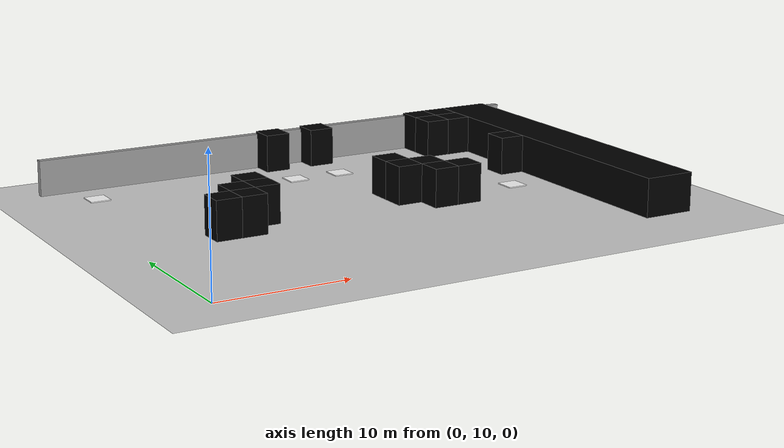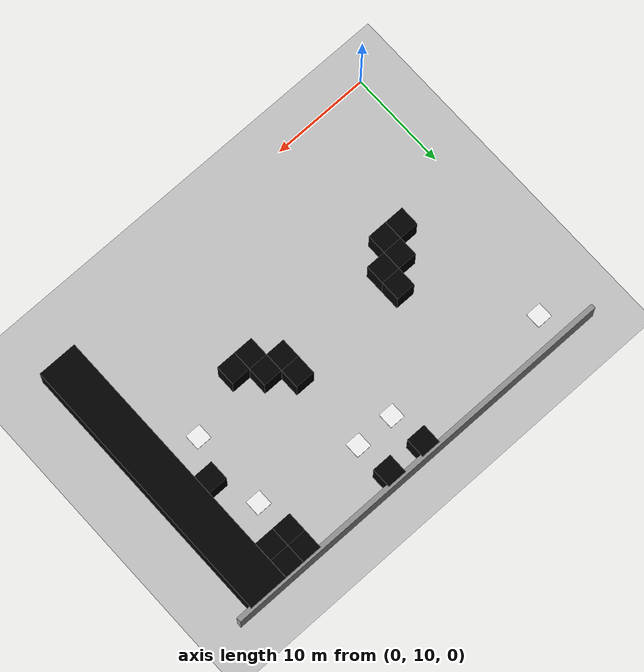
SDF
<sdf version="1.7">
 <world name="default">
  <model name="ground_plane">
   <static>1</static>
   <link name="link">
    <collision name="collision">
     <geometry><plane><normal>0 0 1</normal><size>100 100</size></plane></geometry>
     <surface><friction><ode><mu>100</mu><mu2>50</mu2></ode></friction></surface>
    </collision>
    <visual name="visual">
     <cast_shadows>0</cast_shadows>
     <geometry><plane><normal>0 0 1</normal><size>100 100</size></plane></geometry>
     <material>
      <script><uri>file://media/materials/scripts/gazebo.material</uri><name>Gazebo/Grey</name></script>
     </material>
    </visual>
   </link>
  </model>
  <model name="brick_black_2x2">
   <link name="chassis">
    <pose>0 0 1.5 0 -0 0</pose>
    <inertial>
     <mass>1</mass>
     <inertia><ixx>1</ixx><ixy>0</ixy><ixz>0</ixz><iyy>1</iyy><iyz>0</iyz><izz>1</izz></inertia>
    </inertial>
    <visual name="visual">
     <geometry><mesh><uri>model://brick_box_3x1x3/meshes/simple_box.dae</uri><scale>2 2 3</scale></mesh></geometry>
     <material>
      <script>
       <uri>model://brick_box_3x1x3/materials/scripts</uri>
       <uri>model://brick_box_3x1x3/materials/textures</uri>
       <name>BrickBox/Diffuse</name>
      </script>
      <shader type="vertex"><normal_map>__default__</normal_map></shader>
      <ambient>0 0 0 1</ambient>
      <diffuse>0 0 0 1</diffuse>
      <specular>0 0 0 1</specular>
      <emissive>0 0 0 1</emissive>
      <lighting>1</lighting>
     </material>
    </visual>
    <collision name="collision">
     <geometry><box><size>2 2 3</size></box></geometry>
     <surface>
      <friction>
       <ode><mu>1</mu><mu2>1</mu2><fdir1>0 0 0</fdir1><slip1>0</slip1><slip2>0</slip2></ode>
       <torsional>
        <coefficient>1</coefficient>
        <patch_radius>0</patch_radius>
        <surface_radius>0</surface_radius>
        <use_patch_radius>1</use_patch_radius>
        <ode><slip>0</slip></ode>
       </torsional>
      </friction>
      <bounce><restitution_coefficient>0</restitution_coefficient><threshold>1e+06</threshold></bounce>
      <contact>
       <collide_without_contact>0</collide_without_contact>
       <collide_without_contact_bitmask>1</collide_without_contact_bitmask>
       <collide_bitmask>1</collide_bitmask>
       <ode>
        <soft_cfm>0</soft_cfm>
        <soft_erp>0.2</soft_erp>
        <kp>1e+13</kp>
        <kd>1</kd>
        <max_vel>0.01</max_vel>
        <min_depth>0</min_depth>
       </ode>
       <bullet>
        <split_impulse>1</split_impulse>
        <split_impulse_penetration_threshold>-0.01</split_impulse_penetration_threshold>
        <soft_cfm>0</soft_cfm>
        <soft_erp>0.2</soft_erp>
        <kp>1e+13</kp>
        <kd>1</kd>
       </bullet>
      </contact>
     </surface>
    </collision>
   </link>
   <static>1</static>
   <pose>33 39 0 0 -0 0</pose>
  </model>
  <model name="brick_black_2x2_0">
   <link name="chassis">
    <pose>0 0 1.5 0 -0 0</pose>
    <inertial>
     <mass>1</mass>
     <inertia><ixx>1</ixx><ixy>0</ixy><ixz>0</ixz><iyy>1</iyy><iyz>0</iyz><izz>1</izz></inertia>
    </inertial>
    <visual name="visual">
     <geometry><mesh><uri>model://brick_box_3x1x3/meshes/simple_box.dae</uri><scale>2 2 3</scale></mesh></geometry>
     <material>
      <script>
       <uri>model://brick_box_3x1x3/materials/scripts</uri>
       <uri>model://brick_box_3x1x3/materials/textures</uri>
       <name>BrickBox/Diffuse</name>
      </script>
      <shader type="vertex"><normal_map>__default__</normal_map></shader>
      <ambient>0 0 0 1</ambient>
      <diffuse>0 0 0 1</diffuse>
      <specular>0 0 0 1</specular>
      <emissive>0 0 0 1</emissive>
      <lighting>1</lighting>
     </material>
    </visual>
    <collision name="collision">
     <geometry><box><size>2 2 3</size></box></geometry>
     <surface>
      <friction>
       <ode><mu>1</mu><mu2>1</mu2><fdir1>0 0 0</fdir1><slip1>0</slip1><slip2>0</slip2></ode>
       <torsional>
        <coefficient>1</coefficient>
        <patch_radius>0</patch_radius>
        <surface_radius>0</surface_radius>
        <use_patch_radius>1</use_patch_radius>
        <ode><slip>0</slip></ode>
       </torsional>
      </friction>
      <bounce><restitution_coefficient>0</restitution_coefficient><threshold>1e+06</threshold></bounce>
      <contact>
       <collide_without_contact>0</collide_without_contact>
       <collide_without_contact_bitmask>1</collide_without_contact_bitmask>
       <collide_bitmask>1</collide_bitmask>
       <ode>
        <soft_cfm>0</soft_cfm>
        <soft_erp>0.2</soft_erp>
        <kp>1e+13</kp>
        <kd>1</kd>
        <max_vel>0.01</max_vel>
        <min_depth>0</min_depth>
       </ode>
       <bullet>
        <split_impulse>1</split_impulse>
        <split_impulse_penetration_threshold>-0.01</split_impulse_penetration_threshold>
        <soft_cfm>0</soft_cfm>
        <soft_erp>0.2</soft_erp>
        <kp>1e+13</kp>
        <kd>1</kd>
       </bullet>
      </contact>
     </surface>
    </collision>
   </link>
   <static>1</static>
   <pose>35 29 0 0 -0 0</pose>
  </model>
  <model name="brick_black_2x2_2">
   <link name="chassis">
    <pose>0 0 1.5 0 -0 0</pose>
    <inertial>
     <mass>1</mass>
     <inertia><ixx>1</ixx><ixy>0</ixy><ixz>0</ixz><iyy>1</iyy><iyz>0</iyz><izz>1</izz></inertia>
    </inertial>
    <visual name="visual">
     <geometry><mesh><uri>model://brick_box_3x1x3/meshes/simple_box.dae</uri><scale>2 2 3</scale></mesh></geometry>
     <material>
      <script>
       <uri>model://brick_box_3x1x3/materials/scripts</uri>
       <uri>model://brick_box_3x1x3/materials/textures</uri>
       <name>BrickBox/Diffuse</name>
      </script>
      <shader type="vertex"><normal_map>__default__</normal_map></shader>
      <ambient>0 0 0 1</ambient>
      <diffuse>0 0 0 1</diffuse>
      <specular>0 0 0 1</specular>
      <emissive>0 0 0 1</emissive>
      <lighting>1</lighting>
     </material>
    </visual>
    <collision name="collision">
     <geometry><box><size>2 2 3</size></box></geometry>
     <surface>
      <friction>
       <ode><mu>1</mu><mu2>1</mu2><fdir1>0 0 0</fdir1><slip1>0</slip1><slip2>0</slip2></ode>
       <torsional>
        <coefficient>1</coefficient>
        <patch_radius>0</patch_radius>
        <surface_radius>0</surface_radius>
        <use_patch_radius>1</use_patch_radius>
        <ode><slip>0</slip></ode>
       </torsional>
      </friction>
      <bounce><restitution_coefficient>0</restitution_coefficient><threshold>1e+06</threshold></bounce>
      <contact>
       <collide_without_contact>0</collide_without_contact>
       <collide_without_contact_bitmask>1</collide_without_contact_bitmask>
       <collide_bitmask>1</collide_bitmask>
       <ode>
        <soft_cfm>0</soft_cfm>
        <soft_erp>0.2</soft_erp>
        <kp>1e+13</kp>
        <kd>1</kd>
        <max_vel>0.01</max_vel>
        <min_depth>0</min_depth>
       </ode>
       <bullet>
        <split_impulse>1</split_impulse>
        <split_impulse_penetration_threshold>-0.01</split_impulse_penetration_threshold>
        <soft_cfm>0</soft_cfm>
        <soft_erp>0.2</soft_erp>
        <kp>1e+13</kp>
        <kd>1</kd>
       </bullet>
      </contact>
     </surface>
    </collision>
   </link>
   <static>1</static>
   <pose>33 37 0 0 -0 0</pose>
  </model>
  <model name="brick_black_2x2_3">
   <link name="chassis">
    <pose>0 0 1.5 0 -0 0</pose>
    <inertial>
     <mass>1</mass>
     <inertia><ixx>1</ixx><ixy>0</ixy><ixz>0</ixz><iyy>1</iyy><iyz>0</iyz><izz>1</izz></inertia>
    </inertial>
    <visual name="visual">
     <geometry><mesh><uri>model://brick_box_3x1x3/meshes/simple_box.dae</uri><scale>2 2 3</scale></mesh></geometry>
     <material>
      <script>
       <uri>model://brick_box_3x1x3/materials/scripts</uri>
       <uri>model://brick_box_3x1x3/materials/textures</uri>
       <name>BrickBox/Diffuse</name>
      </script>
      <shader type="vertex"><normal_map>__default__</normal_map></shader>
      <ambient>0 0 0 1</ambient>
      <diffuse>0 0 0 1</diffuse>
      <specular>0 0 0 1</specular>
      <emissive>0 0 0 1</emissive>
      <lighting>1</lighting>
     </material>
    </visual>
    <collision name="collision">
     <geometry><box><size>2 2 3</size></box></geometry>
     <surface>
      <friction>
       <ode><mu>1</mu><mu2>1</mu2><fdir1>0 0 0</fdir1><slip1>0</slip1><slip2>0</slip2></ode>
       <torsional>
        <coefficient>1</coefficient>
        <patch_radius>0</patch_radius>
        <surface_radius>0</surface_radius>
        <use_patch_radius>1</use_patch_radius>
        <ode><slip>0</slip></ode>
       </torsional>
      </friction>
      <bounce><restitution_coefficient>0</restitution_coefficient><threshold>1e+06</threshold></bounce>
      <contact>
       <collide_without_contact>0</collide_without_contact>
       <collide_without_contact_bitmask>1</collide_without_contact_bitmask>
       <collide_bitmask>1</collide_bitmask>
       <ode>
        <soft_cfm>0</soft_cfm>
        <soft_erp>0.2</soft_erp>
        <kp>1e+13</kp>
        <kd>1</kd>
        <max_vel>0.01</max_vel>
        <min_depth>0</min_depth>
       </ode>
       <bullet>
        <split_impulse>1</split_impulse>
        <split_impulse_penetration_threshold>-0.01</split_impulse_penetration_threshold>
        <soft_cfm>0</soft_cfm>
        <soft_erp>0.2</soft_erp>
        <kp>1e+13</kp>
        <kd>1</kd>
       </bullet>
      </contact>
     </surface>
    </collision>
   </link>
   <static>1</static>
   <pose>35 37 0 0 -0 0</pose>
  </model>
  <model name="brick_black_2x2_4">
   <link name="chassis">
    <pose>0 0 1.5 0 -0 0</pose>
    <inertial>
     <mass>1</mass>
     <inertia><ixx>1</ixx><ixy>0</ixy><ixz>0</ixz><iyy>1</iyy><iyz>0</iyz><izz>1</izz></inertia>
    </inertial>
    <visual name="visual">
     <geometry><mesh><uri>model://brick_box_3x1x3/meshes/simple_box.dae</uri><scale>2 2 3</scale></mesh></geometry>
     <material>
      <script>
       <uri>model://brick_box_3x1x3/materials/scripts</uri>
       <uri>model://brick_box_3x1x3/materials/textures</uri>
       <name>BrickBox/Diffuse</name>
      </script>
      <shader type="vertex"><normal_map>__default__</normal_map></shader>
      <ambient>0 0 0 1</ambient>
      <diffuse>0 0 0 1</diffuse>
      <specular>0 0 0 1</specular>
      <emissive>0 0 0 1</emissive>
      <lighting>1</lighting>
     </material>
    </visual>
    <collision name="collision">
     <geometry><box><size>2 2 3</size></box></geometry>
     <surface>
      <friction>
       <ode><mu>1</mu><mu2>1</mu2><fdir1>0 0 0</fdir1><slip1>0</slip1><slip2>0</slip2></ode>
       <torsional>
        <coefficient>1</coefficient>
        <patch_radius>0</patch_radius>
        <surface_radius>0</surface_radius>
        <use_patch_radius>1</use_patch_radius>
        <ode><slip>0</slip></ode>
       </torsional>
      </friction>
      <bounce><restitution_coefficient>0</restitution_coefficient><threshold>1e+06</threshold></bounce>
      <contact>
       <collide_without_contact>0</collide_without_contact>
       <collide_without_contact_bitmask>1</collide_without_contact_bitmask>
       <collide_bitmask>1</collide_bitmask>
       <ode>
        <soft_cfm>0</soft_cfm>
        <soft_erp>0.2</soft_erp>
        <kp>1e+13</kp>
        <kd>1</kd>
        <max_vel>0.01</max_vel>
        <min_depth>0</min_depth>
       </ode>
       <bullet>
        <split_impulse>1</split_impulse>
        <split_impulse_penetration_threshold>-0.01</split_impulse_penetration_threshold>
        <soft_cfm>0</soft_cfm>
        <soft_erp>0.2</soft_erp>
        <kp>1e+13</kp>
        <kd>1</kd>
       </bullet>
      </contact>
     </surface>
    </collision>
   </link>
   <static>1</static>
   <pose>35 39 0 0 -0 0</pose>
  </model>
  <model name="number1_2x2">
   <link name="link">
    <inertial>
     <mass>1</mass>
     <inertia><ixx>1</ixx><ixy>0</ixy><ixz>0</ixz><iyy>1</iyy><iyz>0</iyz><izz>1</izz></inertia>
    </inertial>
    <visual name="visual">
     <geometry><mesh><uri>model://number1/meshes/number.dae</uri><scale>2 2 0.1</scale></mesh></geometry>
     <material>
      <script>
       <uri>model://number1/materials/scripts</uri>
       <uri>model://number1/materials/textures</uri>
       <name>Number/One</name>
      </script>
      <shader type="pixel"><normal_map>__default__</normal_map></shader>
      <ambient>1 1 1 1</ambient>
      <diffuse>1 1 1 1</diffuse>
      <specular>0 0 0 1</specular>
      <emissive>0 0 0 1</emissive>
     </material>
    </visual>
   </link>
   <static>1</static>
   <pose>33 33 0 0 -0 3.14</pose>
  </model>
  <model name="number2_2x2">
   <link name="link">
    <inertial>
     <mass>1</mass>
     <inertia><ixx>1</ixx><ixy>0</ixy><ixz>0</ixz><iyy>1</iyy><iyz>0</iyz><izz>1</izz></inertia>
    </inertial>
    <visual name="visual">
     <geometry><mesh><uri>model://number1/meshes/number.dae</uri><scale>2 2 0.1</scale></mesh></geometry>
     <material>
      <script>
       <uri>model://number2/materials/scripts</uri>
       <uri>model://number2/materials/textures</uri>
       <name>Number/Two</name>
      </script>
      <shader type="pixel"><normal_map>__default__</normal_map></shader>
      <ambient>1 1 1 1</ambient>
      <diffuse>1 1 1 1</diffuse>
      <specular>0 0 0 1</specular>
      <emissive>0 0 0 1</emissive>
     </material>
    </visual>
   </link>
   <static>1</static>
   <pose>33 25 0 0 -0 3.14</pose>
  </model>
  <model name="number4_2x2">
   <link name="link">
    <inertial>
     <mass>1</mass>
     <inertia><ixx>1</ixx><ixy>0</ixy><ixz>0</ixz><iyy>1</iyy><iyz>0</iyz><izz>1</izz></inertia>
    </inertial>
    <visual name="visual">
     <geometry><mesh><uri>model://number1/meshes/number.dae</uri><scale>2 2 0.1</scale></mesh></geometry>
     <material>
      <script>
       <uri>model://number4/materials/scripts</uri>
       <uri>model://number4/materials/textures</uri>
       <name>Number/Four</name>
      </script>
      <shader type="pixel"><normal_map>__default__</normal_map></shader>
      <ambient>1 1 1 1</ambient>
      <diffuse>1 1 1 1</diffuse>
      <specular>0 0 0 1</specular>
      <emissive>0 0 0 1</emissive>
     </material>
    </visual>
   </link>
   <static>1</static>
   <pose>3 37 0 0 -0 3.14</pose>
  </model>
  <model name="number5_2x2">
   <link name="link">
    <inertial>
     <mass>1</mass>
     <inertia><ixx>1</ixx><ixy>0</ixy><ixz>0</ixz><iyy>1</iyy><iyz>0</iyz><izz>1</izz></inertia>
    </inertial>
    <visual name="visual">
     <geometry><mesh><uri>model://number1/meshes/number.dae</uri><scale>2 2 0.1</scale></mesh></geometry>
     <material>
      <script>
       <uri>model://number5/materials/scripts</uri>
       <uri>model://number5/materials/textures</uri>
       <name>Number/Five</name>
      </script>
      <shader type="pixel"><normal_map>__default__</normal_map></shader>
      <ambient>1 1 1 1</ambient>
      <diffuse>1 1 1 1</diffuse>
      <specular>0 0 0 1</specular>
      <emissive>0 0 0 1</emissive>
     </material>
    </visual>
   </link>
   <static>1</static>
   <pose>23 35 0 0 -0 3.14</pose>
  </model>
  <model name="number6_2x2">
   <link name="link">
    <inertial>
     <mass>1</mass>
     <inertia><ixx>1</ixx><ixy>0</ixy><ixz>0</ixz><iyy>1</iyy><iyz>0</iyz><izz>1</izz></inertia>
    </inertial>
    <visual name="visual">
     <geometry><mesh><uri>model://number1/meshes/number.dae</uri><scale>2 2 0.1</scale></mesh></geometry>
     <material>
      <script>
       <uri>model://number6/materials/scripts</uri>
       <uri>model://number6/materials/textures</uri>
       <name>Number/Six</name>
      </script>
      <shader type="pixel"><normal_map>__default__</normal_map></shader>
      <ambient>1 1 1 1</ambient>
      <diffuse>1 1 1 1</diffuse>
      <specular>0 0 0 1</specular>
      <emissive>0 0 0 1</emissive>
     </material>
    </visual>
   </link>
   <static>1</static>
   <pose>19 35 0 0 -0 3.14</pose>
  </model>
  <model name="grey_wall_42_0">
   <link name="link">
    <pose>0 0 1.4 0 -0 0</pose>
    <inertial>
     <mass>1</mass>
     <inertia><ixx>1</ixx><ixy>0</ixy><ixz>0</ixz><iyy>1</iyy><iyz>0</iyz><izz>1</izz></inertia>
    </inertial>
    <visual name="visual">
     <cast_shadows>0</cast_shadows>
     <geometry><box><size>42 0.5 2.8</size></box></geometry>
     <material>
      <script>
       <uri>model://grey_wall/materials/scripts</uri>
       <uri>model://grey_wall/materials/textures</uri>
       <name>vrc/grey_wall</name>
      </script>
      <shader type="vertex"><normal_map>__default__</normal_map></shader>
      <ambient>1 1 1 1</ambient>
      <diffuse>1 1 1 1</diffuse>
      <specular>0 0 0 1</specular>
      <emissive>0 0 0 1</emissive>
     </material>
    </visual>
    <collision name="collision">
     <geometry><box><size>42 0.5 2.8</size></box></geometry>
     <surface>
      <friction>
       <ode><mu>1</mu><mu2>1</mu2><fdir1>0 0 0</fdir1><slip1>0</slip1><slip2>0</slip2></ode>
       <torsional>
        <coefficient>1</coefficient>
        <patch_radius>0</patch_radius>
        <surface_radius>0</surface_radius>
        <use_patch_radius>1</use_patch_radius>
        <ode><slip>0</slip></ode>
       </torsional>
      </friction>
      <bounce><restitution_coefficient>0</restitution_coefficient><threshold>1e+06</threshold></bounce>
      <contact>
       <collide_without_contact>0</collide_without_contact>
       <collide_without_contact_bitmask>1</collide_without_contact_bitmask>
       <collide_bitmask>1</collide_bitmask>
       <ode>
        <soft_cfm>0</soft_cfm>
        <soft_erp>0.2</soft_erp>
        <kp>1e+13</kp>
        <kd>1</kd>
        <max_vel>0.01</max_vel>
        <min_depth>0</min_depth>
       </ode>
       <bullet>
        <split_impulse>1</split_impulse>
        <split_impulse_penetration_threshold>-0.01</split_impulse_penetration_threshold>
        <soft_cfm>0</soft_cfm>
        <soft_erp>0.2</soft_erp>
        <kp>1e+13</kp>
        <kd>1</kd>
       </bullet>
      </contact>
     </surface>
    </collision>
   </link>
   <static>1</static>
   <pose>20.5 40 0 0 -0 0</pose>
  </model>
  <model name="brick_black_28x4">
   <link name="chassis">
    <pose>0 0 1.5 0 -0 0</pose>
    <inertial>
     <mass>1</mass>
     <inertia><ixx>1</ixx><ixy>0</ixy><ixz>0</ixz><iyy>1</iyy><iyz>0</iyz><izz>1</izz></inertia>
    </inertial>
    <visual name="visual">
     <geometry>
      <mesh><uri>model://brick_box_3x1x3/meshes/simple_box.dae</uri><scale>28 4 3</scale></mesh>
     </geometry>
     <material>
      <script>
       <uri>model://brick_box_3x1x3/materials/scripts</uri>
       <uri>model://brick_box_3x1x3/materials/textures</uri>
       <name>BrickBox/Diffuse</name>
      </script>
      <shader type="vertex"><normal_map>__default__</normal_map></shader>
      <ambient>0 0 0 1</ambient>
      <diffuse>0 0 0 1</diffuse>
      <specular>0 0 0 1</specular>
      <emissive>0 0 0 1</emissive>
      <lighting>1</lighting>
     </material>
    </visual>
    <collision name="collision">
     <geometry><box><size>28 4 3</size></box></geometry>
     <surface>
      <friction>
       <ode><mu>1</mu><mu2>1</mu2><fdir1>0 0 0</fdir1><slip1>0</slip1><slip2>0</slip2></ode>
       <torsional>
        <coefficient>1</coefficient>
        <patch_radius>0</patch_radius>
        <surface_radius>0</surface_radius>
        <use_patch_radius>1</use_patch_radius>
        <ode><slip>0</slip></ode>
       </torsional>
      </friction>
      <bounce><restitution_coefficient>0</restitution_coefficient><threshold>1e+06</threshold></bounce>
      <contact>
       <collide_without_contact>0</collide_without_contact>
       <collide_without_contact_bitmask>1</collide_without_contact_bitmask>
       <collide_bitmask>1</collide_bitmask>
       <ode>
        <soft_cfm>0</soft_cfm>
        <soft_erp>0.2</soft_erp>
        <kp>1e+13</kp>
        <kd>1</kd>
        <max_vel>0.01</max_vel>
        <min_depth>0</min_depth>
       </ode>
       <bullet>
        <split_impulse>1</split_impulse>
        <split_impulse_penetration_threshold>-0.01</split_impulse_penetration_threshold>
        <soft_cfm>0</soft_cfm>
        <soft_erp>0.2</soft_erp>
        <kp>1e+13</kp>
        <kd>1</kd>
       </bullet>
      </contact>
     </surface>
    </collision>
   </link>
   <static>1</static>
   <pose>38 26 0 0 -0 1.57</pose>
  </model>
  <model name="brick_black_2x2_15">
   <link name="chassis">
    <pose>0 0 1.5 0 -0 0</pose>
    <inertial>
     <mass>1</mass>
     <inertia><ixx>1</ixx><ixy>0</ixy><ixz>0</ixz><iyy>1</iyy><iyz>0</iyz><izz>1</izz></inertia>
    </inertial>
    <visual name="visual">
     <geometry><mesh><uri>model://brick_box_3x1x3/meshes/simple_box.dae</uri><scale>2 2 3</scale></mesh></geometry>
     <material>
      <script>
       <uri>model://brick_box_3x1x3/materials/scripts</uri>
       <uri>model://brick_box_3x1x3/materials/textures</uri>
       <name>BrickBox/Diffuse</name>
      </script>
      <shader type="vertex"><normal_map>__default__</normal_map></shader>
      <ambient>0 0 0 1</ambient>
      <diffuse>0 0 0 1</diffuse>
      <specular>0 0 0 1</specular>
      <emissive>0 0 0 1</emissive>
      <lighting>1</lighting>
     </material>
    </visual>
    <collision name="collision">
     <geometry><box><size>2 2 3</size></box></geometry>
     <surface>
      <friction>
       <ode><mu>1</mu><mu2>1</mu2><fdir1>0 0 0</fdir1><slip1>0</slip1><slip2>0</slip2></ode>
       <torsional>
        <coefficient>1</coefficient>
        <patch_radius>0</patch_radius>
        <surface_radius>0</surface_radius>
        <use_patch_radius>1</use_patch_radius>
        <ode><slip>0</slip></ode>
       </torsional>
      </friction>
      <bounce><restitution_coefficient>0</restitution_coefficient><threshold>1e+06</threshold></bounce>
      <contact>
       <collide_without_contact>0</collide_without_contact>
       <collide_without_contact_bitmask>1</collide_without_contact_bitmask>
       <collide_bitmask>1</collide_bitmask>
       <ode>
        <soft_cfm>0</soft_cfm>
        <soft_erp>0.2</soft_erp>
        <kp>1e+13</kp>
        <kd>1</kd>
        <max_vel>0.01</max_vel>
        <min_depth>0</min_depth>
       </ode>
       <bullet>
        <split_impulse>1</split_impulse>
        <split_impulse_penetration_threshold>-0.01</split_impulse_penetration_threshold>
        <soft_cfm>0</soft_cfm>
        <soft_erp>0.2</soft_erp>
        <kp>1e+13</kp>
        <kd>1</kd>
       </bullet>
      </contact>
     </surface>
    </collision>
   </link>
   <static>1</static>
   <pose>19 39 0 0 -0 0</pose>
  </model>
  <model name="brick_black_2x2_16">
   <link name="chassis">
    <pose>0 0 1.5 0 -0 0</pose>
    <inertial>
     <mass>1</mass>
     <inertia><ixx>1</ixx><ixy>0</ixy><ixz>0</ixz><iyy>1</iyy><iyz>0</iyz><izz>1</izz></inertia>
    </inertial>
    <visual name="visual">
     <geometry><mesh><uri>model://brick_box_3x1x3/meshes/simple_box.dae</uri><scale>2 2 3</scale></mesh></geometry>
     <material>
      <script>
       <uri>model://brick_box_3x1x3/materials/scripts</uri>
       <uri>model://brick_box_3x1x3/materials/textures</uri>
       <name>BrickBox/Diffuse</name>
      </script>
      <shader type="vertex"><normal_map>__default__</normal_map></shader>
      <ambient>0 0 0 1</ambient>
      <diffuse>0 0 0 1</diffuse>
      <specular>0 0 0 1</specular>
      <emissive>0 0 0 1</emissive>
      <lighting>1</lighting>
     </material>
    </visual>
    <collision name="collision">
     <geometry><box><size>2 2 3</size></box></geometry>
     <surface>
      <friction>
       <ode><mu>1</mu><mu2>1</mu2><fdir1>0 0 0</fdir1><slip1>0</slip1><slip2>0</slip2></ode>
       <torsional>
        <coefficient>1</coefficient>
        <patch_radius>0</patch_radius>
        <surface_radius>0</surface_radius>
        <use_patch_radius>1</use_patch_radius>
        <ode><slip>0</slip></ode>
       </torsional>
      </friction>
      <bounce><restitution_coefficient>0</restitution_coefficient><threshold>1e+06</threshold></bounce>
      <contact>
       <collide_without_contact>0</collide_without_contact>
       <collide_without_contact_bitmask>1</collide_without_contact_bitmask>
       <collide_bitmask>1</collide_bitmask>
       <ode>
        <soft_cfm>0</soft_cfm>
        <soft_erp>0.2</soft_erp>
        <kp>1e+13</kp>
        <kd>1</kd>
        <max_vel>0.01</max_vel>
        <min_depth>0</min_depth>
       </ode>
       <bullet>
        <split_impulse>1</split_impulse>
        <split_impulse_penetration_threshold>-0.01</split_impulse_penetration_threshold>
        <soft_cfm>0</soft_cfm>
        <soft_erp>0.2</soft_erp>
        <kp>1e+13</kp>
        <kd>1</kd>
       </bullet>
      </contact>
     </surface>
    </collision>
   </link>
   <static>1</static>
   <pose>23 39 0 0 -0 0</pose>
  </model>
  <model name="brick_black_2x2_18">
   <link name="chassis">
    <pose>0 0 1.5 0 -0 0</pose>
    <inertial>
     <mass>1</mass>
     <inertia><ixx>1</ixx><ixy>0</ixy><ixz>0</ixz><iyy>1</iyy><iyz>0</iyz><izz>1</izz></inertia>
    </inertial>
    <visual name="visual">
     <geometry><mesh><uri>model://brick_box_3x1x3/meshes/simple_box.dae</uri><scale>2 2 3</scale></mesh></geometry>
     <material>
      <script>
       <uri>model://brick_box_3x1x3/materials/scripts</uri>
       <uri>model://brick_box_3x1x3/materials/textures</uri>
       <name>BrickBox/Diffuse</name>
      </script>
      <shader type="vertex"><normal_map>__default__</normal_map></shader>
      <ambient>0 0 0 1</ambient>
      <diffuse>0 0 0 1</diffuse>
      <specular>0 0 0 1</specular>
      <emissive>0 0 0 1</emissive>
      <lighting>1</lighting>
     </material>
    </visual>
    <collision name="collision">
     <geometry><box><size>2 2 3</size></box></geometry>
     <surface>
      <friction>
       <ode><mu>1</mu><mu2>1</mu2><fdir1>0 0 0</fdir1><slip1>0</slip1><slip2>0</slip2></ode>
       <torsional>
        <coefficient>1</coefficient>
        <patch_radius>0</patch_radius>
        <surface_radius>0</surface_radius>
        <use_patch_radius>1</use_patch_radius>
        <ode><slip>0</slip></ode>
       </torsional>
      </friction>
      <bounce><restitution_coefficient>0</restitution_coefficient><threshold>1e+06</threshold></bounce>
      <contact>
       <collide_without_contact>0</collide_without_contact>
       <collide_without_contact_bitmask>1</collide_without_contact_bitmask>
       <collide_bitmask>1</collide_bitmask>
       <ode>
        <soft_cfm>0</soft_cfm>
        <soft_erp>0.2</soft_erp>
        <kp>1e+13</kp>
        <kd>1</kd>
        <max_vel>0.01</max_vel>
        <min_depth>0</min_depth>
       </ode>
       <bullet>
        <split_impulse>1</split_impulse>
        <split_impulse_penetration_threshold>-0.01</split_impulse_penetration_threshold>
        <soft_cfm>0</soft_cfm>
        <soft_erp>0.2</soft_erp>
        <kp>1e+13</kp>
        <kd>1</kd>
       </bullet>
      </contact>
     </surface>
    </collision>
   </link>
   <static>1</static>
   <pose>27 23 0 0 -0 0</pose>
  </model>
  <model name="brick_black_2x2_19">
   <link name="chassis">
    <pose>0 0 1.5 0 -0 0</pose>
    <inertial>
     <mass>1</mass>
     <inertia><ixx>1</ixx><ixy>0</ixy><ixz>0</ixz><iyy>1</iyy><iyz>0</iyz><izz>1</izz></inertia>
    </inertial>
    <visual name="visual">
     <geometry><mesh><uri>model://brick_box_3x1x3/meshes/simple_box.dae</uri><scale>2 2 3</scale></mesh></geometry>
     <material>
      <script>
       <uri>model://brick_box_3x1x3/materials/scripts</uri>
       <uri>model://brick_box_3x1x3/materials/textures</uri>
       <name>BrickBox/Diffuse</name>
      </script>
      <shader type="vertex"><normal_map>__default__</normal_map></shader>
      <ambient>0 0 0 1</ambient>
      <diffuse>0 0 0 1</diffuse>
      <specular>0 0 0 1</specular>
      <emissive>0 0 0 1</emissive>
      <lighting>1</lighting>
     </material>
    </visual>
    <collision name="collision">
     <geometry><box><size>2 2 3</size></box></geometry>
     <surface>
      <friction>
       <ode><mu>1</mu><mu2>1</mu2><fdir1>0 0 0</fdir1><slip1>0</slip1><slip2>0</slip2></ode>
       <torsional>
        <coefficient>1</coefficient>
        <patch_radius>0</patch_radius>
        <surface_radius>0</surface_radius>
        <use_patch_radius>1</use_patch_radius>
        <ode><slip>0</slip></ode>
       </torsional>
      </friction>
      <bounce><restitution_coefficient>0</restitution_coefficient><threshold>1e+06</threshold></bounce>
      <contact>
       <collide_without_contact>0</collide_without_contact>
       <collide_without_contact_bitmask>1</collide_without_contact_bitmask>
       <collide_bitmask>1</collide_bitmask>
       <ode>
        <soft_cfm>0</soft_cfm>
        <soft_erp>0.2</soft_erp>
        <kp>1e+13</kp>
        <kd>1</kd>
        <max_vel>0.01</max_vel>
        <min_depth>0</min_depth>
       </ode>
       <bullet>
        <split_impulse>1</split_impulse>
        <split_impulse_penetration_threshold>-0.01</split_impulse_penetration_threshold>
        <soft_cfm>0</soft_cfm>
        <soft_erp>0.2</soft_erp>
        <kp>1e+13</kp>
        <kd>1</kd>
       </bullet>
      </contact>
     </surface>
    </collision>
   </link>
   <static>1</static>
   <pose>25 23 0 0 -0 0</pose>
  </model>
  <model name="brick_black_2x2_20">
   <link name="chassis">
    <pose>0 0 1.5 0 -0 0</pose>
    <inertial>
     <mass>1</mass>
     <inertia><ixx>1</ixx><ixy>0</ixy><ixz>0</ixz><iyy>1</iyy><iyz>0</iyz><izz>1</izz></inertia>
    </inertial>
    <visual name="visual">
     <geometry><mesh><uri>model://brick_box_3x1x3/meshes/simple_box.dae</uri><scale>2 2 3</scale></mesh></geometry>
     <material>
      <script>
       <uri>model://brick_box_3x1x3/materials/scripts</uri>
       <uri>model://brick_box_3x1x3/materials/textures</uri>
       <name>BrickBox/Diffuse</name>
      </script>
      <shader type="vertex"><normal_map>__default__</normal_map></shader>
      <ambient>0 0 0 1</ambient>
      <diffuse>0 0 0 1</diffuse>
      <specular>0 0 0 1</specular>
      <emissive>0 0 0 1</emissive>
      <lighting>1</lighting>
     </material>
    </visual>
    <collision name="collision">
     <geometry><box><size>2 2 3</size></box></geometry>
     <surface>
      <friction>
       <ode><mu>1</mu><mu2>1</mu2><fdir1>0 0 0</fdir1><slip1>0</slip1><slip2>0</slip2></ode>
       <torsional>
        <coefficient>1</coefficient>
        <patch_radius>0</patch_radius>
        <surface_radius>0</surface_radius>
        <use_patch_radius>1</use_patch_radius>
        <ode><slip>0</slip></ode>
       </torsional>
      </friction>
      <bounce><restitution_coefficient>0</restitution_coefficient><threshold>1e+06</threshold></bounce>
      <contact>
       <collide_without_contact>0</collide_without_contact>
       <collide_without_contact_bitmask>1</collide_without_contact_bitmask>
       <collide_bitmask>1</collide_bitmask>
       <ode>
        <soft_cfm>0</soft_cfm>
        <soft_erp>0.2</soft_erp>
        <kp>1e+13</kp>
        <kd>1</kd>
        <max_vel>0.01</max_vel>
        <min_depth>0</min_depth>
       </ode>
       <bullet>
        <split_impulse>1</split_impulse>
        <split_impulse_penetration_threshold>-0.01</split_impulse_penetration_threshold>
        <soft_cfm>0</soft_cfm>
        <soft_erp>0.2</soft_erp>
        <kp>1e+13</kp>
        <kd>1</kd>
       </bullet>
      </contact>
     </surface>
    </collision>
   </link>
   <static>1</static>
   <pose>25 25 0 0 -0 0</pose>
  </model>
  <model name="brick_black_2x2_21">
   <link name="chassis">
    <pose>0 0 1.5 0 -0 0</pose>
    <inertial>
     <mass>1</mass>
     <inertia><ixx>1</ixx><ixy>0</ixy><ixz>0</ixz><iyy>1</iyy><iyz>0</iyz><izz>1</izz></inertia>
    </inertial>
    <visual name="visual">
     <geometry><mesh><uri>model://brick_box_3x1x3/meshes/simple_box.dae</uri><scale>2 2 3</scale></mesh></geometry>
     <material>
      <script>
       <uri>model://brick_box_3x1x3/materials/scripts</uri>
       <uri>model://brick_box_3x1x3/materials/textures</uri>
       <name>BrickBox/Diffuse</name>
      </script>
      <shader type="vertex"><normal_map>__default__</normal_map></shader>
      <ambient>0 0 0 1</ambient>
      <diffuse>0 0 0 1</diffuse>
      <specular>0 0 0 1</specular>
      <emissive>0 0 0 1</emissive>
      <lighting>1</lighting>
     </material>
    </visual>
    <collision name="collision">
     <geometry><box><size>2 2 3</size></box></geometry>
     <surface>
      <friction>
       <ode><mu>1</mu><mu2>1</mu2><fdir1>0 0 0</fdir1><slip1>0</slip1><slip2>0</slip2></ode>
       <torsional>
        <coefficient>1</coefficient>
        <patch_radius>0</patch_radius>
        <surface_radius>0</surface_radius>
        <use_patch_radius>1</use_patch_radius>
        <ode><slip>0</slip></ode>
       </torsional>
      </friction>
      <bounce><restitution_coefficient>0</restitution_coefficient><threshold>1e+06</threshold></bounce>
      <contact>
       <collide_without_contact>0</collide_without_contact>
       <collide_without_contact_bitmask>1</collide_without_contact_bitmask>
       <collide_bitmask>1</collide_bitmask>
       <ode>
        <soft_cfm>0</soft_cfm>
        <soft_erp>0.2</soft_erp>
        <kp>1e+13</kp>
        <kd>1</kd>
        <max_vel>0.01</max_vel>
        <min_depth>0</min_depth>
       </ode>
       <bullet>
        <split_impulse>1</split_impulse>
        <split_impulse_penetration_threshold>-0.01</split_impulse_penetration_threshold>
        <soft_cfm>0</soft_cfm>
        <soft_erp>0.2</soft_erp>
        <kp>1e+13</kp>
        <kd>1</kd>
       </bullet>
      </contact>
     </surface>
    </collision>
   </link>
   <static>1</static>
   <pose>23 25 0 0 -0 0</pose>
  </model>
  <model name="brick_black_2x2_22">
   <link name="chassis">
    <pose>0 0 1.5 0 -0 0</pose>
    <inertial>
     <mass>1</mass>
     <inertia><ixx>1</ixx><ixy>0</ixy><ixz>0</ixz><iyy>1</iyy><iyz>0</iyz><izz>1</izz></inertia>
    </inertial>
    <visual name="visual">
     <geometry><mesh><uri>model://brick_box_3x1x3/meshes/simple_box.dae</uri><scale>2 2 3</scale></mesh></geometry>
     <material>
      <script>
       <uri>model://brick_box_3x1x3/materials/scripts</uri>
       <uri>model://brick_box_3x1x3/materials/textures</uri>
       <name>BrickBox/Diffuse</name>
      </script>
      <shader type="vertex"><normal_map>__default__</normal_map></shader>
      <ambient>0 0 0 1</ambient>
      <diffuse>0 0 0 1</diffuse>
      <specular>0 0 0 1</specular>
      <emissive>0 0 0 1</emissive>
      <lighting>1</lighting>
     </material>
    </visual>
    <collision name="collision">
     <geometry><box><size>2 2 3</size></box></geometry>
     <surface>
      <friction>
       <ode><mu>1</mu><mu2>1</mu2><fdir1>0 0 0</fdir1><slip1>0</slip1><slip2>0</slip2></ode>
       <torsional>
        <coefficient>1</coefficient>
        <patch_radius>0</patch_radius>
        <surface_radius>0</surface_radius>
        <use_patch_radius>1</use_patch_radius>
        <ode><slip>0</slip></ode>
       </torsional>
      </friction>
      <bounce><restitution_coefficient>0</restitution_coefficient><threshold>1e+06</threshold></bounce>
      <contact>
       <collide_without_contact>0</collide_without_contact>
       <collide_without_contact_bitmask>1</collide_without_contact_bitmask>
       <collide_bitmask>1</collide_bitmask>
       <ode>
        <soft_cfm>0</soft_cfm>
        <soft_erp>0.2</soft_erp>
        <kp>1e+13</kp>
        <kd>1</kd>
        <max_vel>0.01</max_vel>
        <min_depth>0</min_depth>
       </ode>
       <bullet>
        <split_impulse>1</split_impulse>
        <split_impulse_penetration_threshold>-0.01</split_impulse_penetration_threshold>
        <soft_cfm>0</soft_cfm>
        <soft_erp>0.2</soft_erp>
        <kp>1e+13</kp>
        <kd>1</kd>
       </bullet>
      </contact>
     </surface>
    </collision>
   </link>
   <static>1</static>
   <pose>23 27 0 0 -0 0</pose>
  </model>
  <model name="brick_black_2x2_23">
   <link name="chassis">
    <pose>0 0 1.5 0 -0 0</pose>
    <inertial>
     <mass>1</mass>
     <inertia><ixx>1</ixx><ixy>0</ixy><ixz>0</ixz><iyy>1</iyy><iyz>0</iyz><izz>1</izz></inertia>
    </inertial>
    <visual name="visual">
     <geometry><mesh><uri>model://brick_box_3x1x3/meshes/simple_box.dae</uri><scale>2 2 3</scale></mesh></geometry>
     <material>
      <script>
       <uri>model://brick_box_3x1x3/materials/scripts</uri>
       <uri>model://brick_box_3x1x3/materials/textures</uri>
       <name>BrickBox/Diffuse</name>
      </script>
      <shader type="vertex"><normal_map>__default__</normal_map></shader>
      <ambient>0 0 0 1</ambient>
      <diffuse>0 0 0 1</diffuse>
      <specular>0 0 0 1</specular>
      <emissive>0 0 0 1</emissive>
      <lighting>1</lighting>
     </material>
    </visual>
    <collision name="collision">
     <geometry><box><size>2 2 3</size></box></geometry>
     <surface>
      <friction>
       <ode><mu>1</mu><mu2>1</mu2><fdir1>0 0 0</fdir1><slip1>0</slip1><slip2>0</slip2></ode>
       <torsional>
        <coefficient>1</coefficient>
        <patch_radius>0</patch_radius>
        <surface_radius>0</surface_radius>
        <use_patch_radius>1</use_patch_radius>
        <ode><slip>0</slip></ode>
       </torsional>
      </friction>
      <bounce><restitution_coefficient>0</restitution_coefficient><threshold>1e+06</threshold></bounce>
      <contact>
       <collide_without_contact>0</collide_without_contact>
       <collide_without_contact_bitmask>1</collide_without_contact_bitmask>
       <collide_bitmask>1</collide_bitmask>
       <ode>
        <soft_cfm>0</soft_cfm>
        <soft_erp>0.2</soft_erp>
        <kp>1e+13</kp>
        <kd>1</kd>
        <max_vel>0.01</max_vel>
        <min_depth>0</min_depth>
       </ode>
       <bullet>
        <split_impulse>1</split_impulse>
        <split_impulse_penetration_threshold>-0.01</split_impulse_penetration_threshold>
        <soft_cfm>0</soft_cfm>
        <soft_erp>0.2</soft_erp>
        <kp>1e+13</kp>
        <kd>1</kd>
       </bullet>
      </contact>
     </surface>
    </collision>
   </link>
   <static>1</static>
   <pose>11 27 0 0 -0 0</pose>
  </model>
  <model name="brick_black_2x2_24">
   <link name="chassis">
    <pose>0 0 1.5 0 -0 0</pose>
    <inertial>
     <mass>1</mass>
     <inertia><ixx>1</ixx><ixy>0</ixy><ixz>0</ixz><iyy>1</iyy><iyz>0</iyz><izz>1</izz></inertia>
    </inertial>
    <visual name="visual">
     <geometry><mesh><uri>model://brick_box_3x1x3/meshes/simple_box.dae</uri><scale>2 2 3</scale></mesh></geometry>
     <material>
      <script>
       <uri>model://brick_box_3x1x3/materials/scripts</uri>
       <uri>model://brick_box_3x1x3/materials/textures</uri>
       <name>BrickBox/Diffuse</name>
      </script>
      <shader type="vertex"><normal_map>__default__</normal_map></shader>
      <ambient>0 0 0 1</ambient>
      <diffuse>0 0 0 1</diffuse>
      <specular>0 0 0 1</specular>
      <emissive>0 0 0 1</emissive>
      <lighting>1</lighting>
     </material>
    </visual>
    <collision name="collision">
     <geometry><box><size>2 2 3</size></box></geometry>
     <surface>
      <friction>
       <ode><mu>1</mu><mu2>1</mu2><fdir1>0 0 0</fdir1><slip1>0</slip1><slip2>0</slip2></ode>
       <torsional>
        <coefficient>1</coefficient>
        <patch_radius>0</patch_radius>
        <surface_radius>0</surface_radius>
        <use_patch_radius>1</use_patch_radius>
        <ode><slip>0</slip></ode>
       </torsional>
      </friction>
      <bounce><restitution_coefficient>0</restitution_coefficient><threshold>1e+06</threshold></bounce>
      <contact>
       <collide_without_contact>0</collide_without_contact>
       <collide_without_contact_bitmask>1</collide_without_contact_bitmask>
       <collide_bitmask>1</collide_bitmask>
       <ode>
        <soft_cfm>0</soft_cfm>
        <soft_erp>0.2</soft_erp>
        <kp>1e+13</kp>
        <kd>1</kd>
        <max_vel>0.01</max_vel>
        <min_depth>0</min_depth>
       </ode>
       <bullet>
        <split_impulse>1</split_impulse>
        <split_impulse_penetration_threshold>-0.01</split_impulse_penetration_threshold>
        <soft_cfm>0</soft_cfm>
        <soft_erp>0.2</soft_erp>
        <kp>1e+13</kp>
        <kd>1</kd>
       </bullet>
      </contact>
     </surface>
    </collision>
   </link>
   <static>1</static>
   <pose>11 25 0 0 -0 0</pose>
  </model>
  <model name="brick_black_2x2_25">
   <link name="chassis">
    <pose>0 0 1.5 0 -0 0</pose>
    <inertial>
     <mass>1</mass>
     <inertia><ixx>1</ixx><ixy>0</ixy><ixz>0</ixz><iyy>1</iyy><iyz>0</iyz><izz>1</izz></inertia>
    </inertial>
    <visual name="visual">
     <geometry><mesh><uri>model://brick_box_3x1x3/meshes/simple_box.dae</uri><scale>2 2 3</scale></mesh></geometry>
     <material>
      <script>
       <uri>model://brick_box_3x1x3/materials/scripts</uri>
       <uri>model://brick_box_3x1x3/materials/textures</uri>
       <name>BrickBox/Diffuse</name>
      </script>
      <shader type="vertex"><normal_map>__default__</normal_map></shader>
      <ambient>0 0 0 1</ambient>
      <diffuse>0 0 0 1</diffuse>
      <specular>0 0 0 1</specular>
      <emissive>0 0 0 1</emissive>
      <lighting>1</lighting>
     </material>
    </visual>
    <collision name="collision">
     <geometry><box><size>2 2 3</size></box></geometry>
     <surface>
      <friction>
       <ode><mu>1</mu><mu2>1</mu2><fdir1>0 0 0</fdir1><slip1>0</slip1><slip2>0</slip2></ode>
       <torsional>
        <coefficient>1</coefficient>
        <patch_radius>0</patch_radius>
        <surface_radius>0</surface_radius>
        <use_patch_radius>1</use_patch_radius>
        <ode><slip>0</slip></ode>
       </torsional>
      </friction>
      <bounce><restitution_coefficient>0</restitution_coefficient><threshold>1e+06</threshold></bounce>
      <contact>
       <collide_without_contact>0</collide_without_contact>
       <collide_without_contact_bitmask>1</collide_without_contact_bitmask>
       <collide_bitmask>1</collide_bitmask>
       <ode>
        <soft_cfm>0</soft_cfm>
        <soft_erp>0.2</soft_erp>
        <kp>1e+13</kp>
        <kd>1</kd>
        <max_vel>0.01</max_vel>
        <min_depth>0</min_depth>
       </ode>
       <bullet>
        <split_impulse>1</split_impulse>
        <split_impulse_penetration_threshold>-0.01</split_impulse_penetration_threshold>
        <soft_cfm>0</soft_cfm>
        <soft_erp>0.2</soft_erp>
        <kp>1e+13</kp>
        <kd>1</kd>
       </bullet>
      </contact>
     </surface>
    </collision>
   </link>
   <static>1</static>
   <pose>9 25 0 0 -0 0</pose>
  </model>
  <model name="brick_black_2x2_26">
   <link name="chassis">
    <pose>0 0 1.5 0 -0 0</pose>
    <inertial>
     <mass>1</mass>
     <inertia><ixx>1</ixx><ixy>0</ixy><ixz>0</ixz><iyy>1</iyy><iyz>0</iyz><izz>1</izz></inertia>
    </inertial>
    <visual name="visual">
     <geometry><mesh><uri>model://brick_box_3x1x3/meshes/simple_box.dae</uri><scale>2 2 3</scale></mesh></geometry>
     <material>
      <script>
       <uri>model://brick_box_3x1x3/materials/scripts</uri>
       <uri>model://brick_box_3x1x3/materials/textures</uri>
       <name>BrickBox/Diffuse</name>
      </script>
      <shader type="vertex"><normal_map>__default__</normal_map></shader>
      <ambient>0 0 0 1</ambient>
      <diffuse>0 0 0 1</diffuse>
      <specular>0 0 0 1</specular>
      <emissive>0 0 0 1</emissive>
      <lighting>1</lighting>
     </material>
    </visual>
    <collision name="collision">
     <geometry><box><size>2 2 3</size></box></geometry>
     <surface>
      <friction>
       <ode><mu>1</mu><mu2>1</mu2><fdir1>0 0 0</fdir1><slip1>0</slip1><slip2>0</slip2></ode>
       <torsional>
        <coefficient>1</coefficient>
        <patch_radius>0</patch_radius>
        <surface_radius>0</surface_radius>
        <use_patch_radius>1</use_patch_radius>
        <ode><slip>0</slip></ode>
       </torsional>
      </friction>
      <bounce><restitution_coefficient>0</restitution_coefficient><threshold>1e+06</threshold></bounce>
      <contact>
       <collide_without_contact>0</collide_without_contact>
       <collide_without_contact_bitmask>1</collide_without_contact_bitmask>
       <collide_bitmask>1</collide_bitmask>
       <ode>
        <soft_cfm>0</soft_cfm>
        <soft_erp>0.2</soft_erp>
        <kp>1e+13</kp>
        <kd>1</kd>
        <max_vel>0.01</max_vel>
        <min_depth>0</min_depth>
       </ode>
       <bullet>
        <split_impulse>1</split_impulse>
        <split_impulse_penetration_threshold>-0.01</split_impulse_penetration_threshold>
        <soft_cfm>0</soft_cfm>
        <soft_erp>0.2</soft_erp>
        <kp>1e+13</kp>
        <kd>1</kd>
       </bullet>
      </contact>
     </surface>
    </collision>
   </link>
   <static>1</static>
   <pose>9 23 0 0 -0 0</pose>
  </model>
  <model name="brick_black_2x2_27">
   <link name="chassis">
    <pose>0 0 1.5 0 -0 0</pose>
    <inertial>
     <mass>1</mass>
     <inertia><ixx>1</ixx><ixy>0</ixy><ixz>0</ixz><iyy>1</iyy><iyz>0</iyz><izz>1</izz></inertia>
    </inertial>
    <visual name="visual">
     <geometry><mesh><uri>model://brick_box_3x1x3/meshes/simple_box.dae</uri><scale>2 2 3</scale></mesh></geometry>
     <material>
      <script>
       <uri>model://brick_box_3x1x3/materials/scripts</uri>
       <uri>model://brick_box_3x1x3/materials/textures</uri>
       <name>BrickBox/Diffuse</name>
      </script>
      <shader type="vertex"><normal_map>__default__</normal_map></shader>
      <ambient>0 0 0 1</ambient>
      <diffuse>0 0 0 1</diffuse>
      <specular>0 0 0 1</specular>
      <emissive>0 0 0 1</emissive>
      <lighting>1</lighting>
     </material>
    </visual>
    <collision name="collision">
     <geometry><box><size>2 2 3</size></box></geometry>
     <surface>
      <friction>
       <ode><mu>1</mu><mu2>1</mu2><fdir1>0 0 0</fdir1><slip1>0</slip1><slip2>0</slip2></ode>
       <torsional>
        <coefficient>1</coefficient>
        <patch_radius>0</patch_radius>
        <surface_radius>0</surface_radius>
        <use_patch_radius>1</use_patch_radius>
        <ode><slip>0</slip></ode>
       </torsional>
      </friction>
      <bounce><restitution_coefficient>0</restitution_coefficient><threshold>1e+06</threshold></bounce>
      <contact>
       <collide_without_contact>0</collide_without_contact>
       <collide_without_contact_bitmask>1</collide_without_contact_bitmask>
       <collide_bitmask>1</collide_bitmask>
       <ode>
        <soft_cfm>0</soft_cfm>
        <soft_erp>0.2</soft_erp>
        <kp>1e+13</kp>
        <kd>1</kd>
        <max_vel>0.01</max_vel>
        <min_depth>0</min_depth>
       </ode>
       <bullet>
        <split_impulse>1</split_impulse>
        <split_impulse_penetration_threshold>-0.01</split_impulse_penetration_threshold>
        <soft_cfm>0</soft_cfm>
        <soft_erp>0.2</soft_erp>
        <kp>1e+13</kp>
        <kd>1</kd>
       </bullet>
      </contact>
     </surface>
    </collision>
   </link>
   <static>1</static>
   <pose>7 23 0 0 -0 0</pose>
  </model>
 </world>
</sdf>
